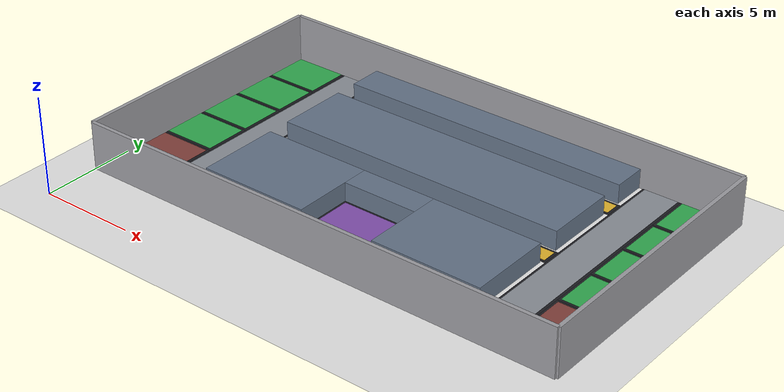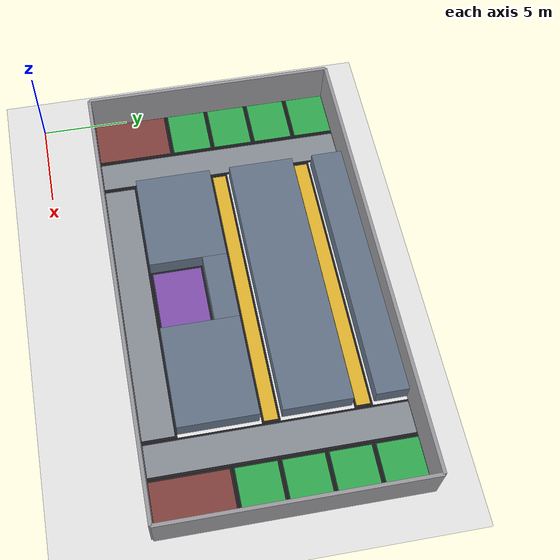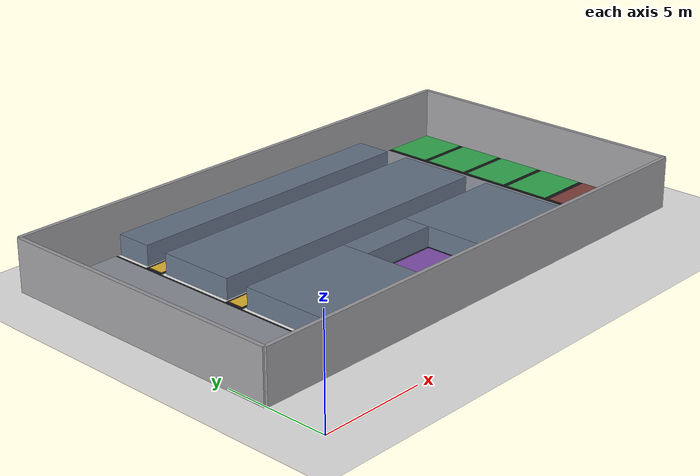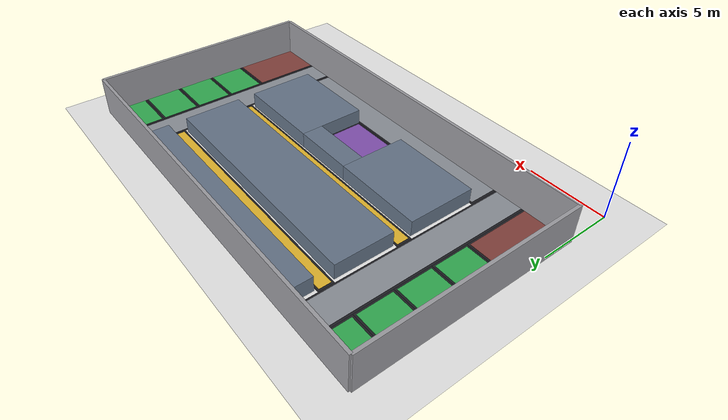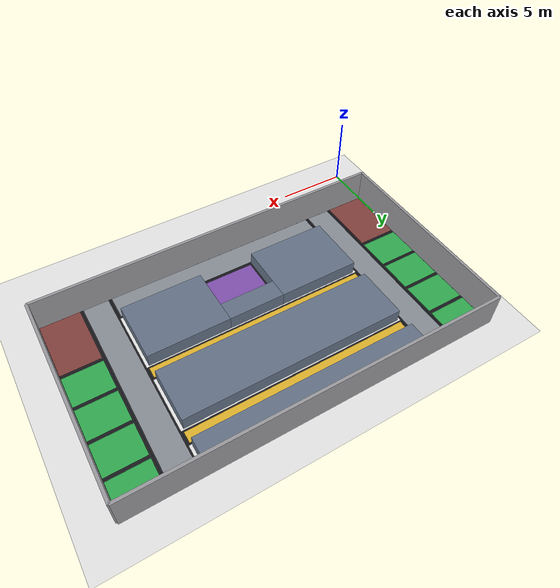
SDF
<sdf version='1.10'>
  <world name='p2'>
    <physics name='1ms' type='ignored'>
      <max_step_size>0.001</max_step_size><real_time_factor>1</real_time_factor>
    </physics>
    <plugin name='gz::sim::systems::Physics' filename='gz-sim-physics-system'/>
    <plugin name='gz::sim::systems::UserCommands' filename='gz-sim-user-commands-system'/>
    <plugin name='gz::sim::systems::SceneBroadcaster' filename='gz-sim-scene-broadcaster-system'/>
    <plugin name='gz::sim::systems::Contact' filename='gz-sim-contact-system'/>
    <!-- 서버 레벨 시스템(시뮬당 1개) — 멀티로봇에서 로봇마다 넣으면 씬 중복 crash → 월드에 둠 -->
    <plugin name='gz::sim::systems::Sensors' filename='gz-sim-sensors-system'><render_engine>ogre2</render_engine></plugin>
    <plugin name='gz::sim::systems::Imu' filename='gz-sim-imu-system'/>
    <scene><ambient>0.5 0.5 0.5 1</ambient><background>0.85 0.87 0.9 1</background><shadows>true</shadows></scene>
    <model name='ground_plane'><static>true</static><link name='link'>
      <collision name='c'><geometry><plane><normal>0 0 1</normal><size>100 100</size></plane></geometry></collision>
      <visual name='v'><geometry><plane><normal>0 0 1</normal><size>100 100</size></plane></geometry>
      <material><ambient>0.92 0.92 0.92 1</ambient><diffuse>0.92 0.92 0.92 1</diffuse></material></visual>
    </link></model>
    <!-- floor zone tiles: 다크 테두리 + 색 inset (place 경계 가시) -->
    <model name='border_aisle_short_1'>
      <static>true</static>
      <pose>13.0 15.0 0.01 0 0 0</pose>
      <link name='link'>
        <visual name='v'><geometry><box><size>16.0 1.0 0.02</size></box></geometry><material><ambient>0.12 0.12 0.14 1</ambient><diffuse>0.12 0.12 0.14 1</diffuse></material></visual>
      </link>
    </model>
    <model name='tile_aisle_short_1'>
      <static>true</static>
      <pose>13.0 15.0 0.031 0 0 0</pose>
      <link name='link'>
        <visual name='v'><geometry><box><size>15.76 0.76 0.02</size></box></geometry><material><ambient>0.9 0.72 0.18 1</ambient><diffuse>0.9 0.72 0.18 1</diffuse></material></visual>
      </link>
    </model>
    <model name='border_aisle_short_2'>
      <static>true</static>
      <pose>13.0 10.0 0.01 0 0 0</pose>
      <link name='link'>
        <visual name='v'><geometry><box><size>16.0 1.0 0.02</size></box></geometry><material><ambient>0.12 0.12 0.14 1</ambient><diffuse>0.12 0.12 0.14 1</diffuse></material></visual>
      </link>
    </model>
    <model name='tile_aisle_short_2'>
      <static>true</static>
      <pose>13.0 10.0 0.031 0 0 0</pose>
      <link name='link'>
        <visual name='v'><geometry><box><size>15.76 0.76 0.02</size></box></geometry><material><ambient>0.9 0.72 0.18 1</ambient><diffuse>0.9 0.72 0.18 1</diffuse></material></visual>
      </link>
    </model>
    <model name='border_corridor_load'>
      <static>true</static>
      <pose>4.0 10.25 0.01 0 0 0</pose>
      <link name='link'>
        <visual name='v'><geometry><box><size>2.0 14.5 0.02</size></box></geometry><material><ambient>0.12 0.12 0.14 1</ambient><diffuse>0.12 0.12 0.14 1</diffuse></material></visual>
      </link>
    </model>
    <model name='tile_corridor_load'>
      <static>true</static>
      <pose>4.0 10.25 0.031 0 0 0</pose>
      <link name='link'>
        <visual name='v'><geometry><box><size>1.76 14.26 0.02</size></box></geometry><material><ambient>0.55 0.57 0.6 1</ambient><diffuse>0.55 0.57 0.6 1</diffuse></material></visual>
      </link>
    </model>
    <model name='border_corridor_unload'>
      <static>true</static>
      <pose>22.0 10.25 0.01 0 0 0</pose>
      <link name='link'>
        <visual name='v'><geometry><box><size>2.0 14.5 0.02</size></box></geometry><material><ambient>0.12 0.12 0.14 1</ambient><diffuse>0.12 0.12 0.14 1</diffuse></material></visual>
      </link>
    </model>
    <model name='tile_corridor_unload'>
      <static>true</static>
      <pose>22.0 10.25 0.031 0 0 0</pose>
      <link name='link'>
        <visual name='v'><geometry><box><size>1.76 14.26 0.02</size></box></geometry><material><ambient>0.55 0.57 0.6 1</ambient><diffuse>0.55 0.57 0.6 1</diffuse></material></visual>
      </link>
    </model>
    <model name='border_corridor_main'>
      <static>true</static>
      <pose>13.0 4.0 0.01 0 0 0</pose>
      <link name='link'>
        <visual name='v'><geometry><box><size>16.0 2.0 0.02</size></box></geometry><material><ambient>0.12 0.12 0.14 1</ambient><diffuse>0.12 0.12 0.14 1</diffuse></material></visual>
      </link>
    </model>
    <model name='tile_corridor_main'>
      <static>true</static>
      <pose>13.0 4.0 0.031 0 0 0</pose>
      <link name='link'>
        <visual name='v'><geometry><box><size>15.76 1.76 0.02</size></box></geometry><material><ambient>0.55 0.57 0.6 1</ambient><diffuse>0.55 0.57 0.6 1</diffuse></material></visual>
      </link>
    </model>
    <model name='border_home'>
      <static>true</static>
      <pose>13.0 6.5 0.01 0 0 0</pose>
      <link name='link'>
        <visual name='v'><geometry><box><size>4.0 3.0 0.02</size></box></geometry><material><ambient>0.12 0.12 0.14 1</ambient><diffuse>0.12 0.12 0.14 1</diffuse></material></visual>
      </link>
    </model>
    <model name='tile_home'>
      <static>true</static>
      <pose>13.0 6.5 0.031 0 0 0</pose>
      <link name='link'>
        <visual name='v'><geometry><box><size>3.76 2.76 0.02</size></box></geometry><material><ambient>0.52 0.32 0.7 1</ambient><diffuse>0.52 0.32 0.7 1</diffuse></material></visual>
      </link>
    </model>
    <model name='border_loading_1'>
      <static>true</static>
      <pose>1.5 16.25 0.01 0 0 0</pose>
      <link name='link'>
        <visual name='v'><geometry><box><size>3.0 2.5 0.02</size></box></geometry><material><ambient>0.12 0.12 0.14 1</ambient><diffuse>0.12 0.12 0.14 1</diffuse></material></visual>
      </link>
    </model>
    <model name='tile_loading_1'>
      <static>true</static>
      <pose>1.5 16.25 0.031 0 0 0</pose>
      <link name='link'>
        <visual name='v'><geometry><box><size>2.76 2.26 0.02</size></box></geometry><material><ambient>0.2 0.68 0.32 1</ambient><diffuse>0.2 0.68 0.32 1</diffuse></material></visual>
      </link>
    </model>
    <model name='border_loading_2'>
      <static>true</static>
      <pose>1.5 13.75 0.01 0 0 0</pose>
      <link name='link'>
        <visual name='v'><geometry><box><size>3.0 2.5 0.02</size></box></geometry><material><ambient>0.12 0.12 0.14 1</ambient><diffuse>0.12 0.12 0.14 1</diffuse></material></visual>
      </link>
    </model>
    <model name='tile_loading_2'>
      <static>true</static>
      <pose>1.5 13.75 0.031 0 0 0</pose>
      <link name='link'>
        <visual name='v'><geometry><box><size>2.76 2.26 0.02</size></box></geometry><material><ambient>0.2 0.68 0.32 1</ambient><diffuse>0.2 0.68 0.32 1</diffuse></material></visual>
      </link>
    </model>
    <model name='border_loading_3'>
      <static>true</static>
      <pose>1.5 11.25 0.01 0 0 0</pose>
      <link name='link'>
        <visual name='v'><geometry><box><size>3.0 2.5 0.02</size></box></geometry><material><ambient>0.12 0.12 0.14 1</ambient><diffuse>0.12 0.12 0.14 1</diffuse></material></visual>
      </link>
    </model>
    <model name='tile_loading_3'>
      <static>true</static>
      <pose>1.5 11.25 0.031 0 0 0</pose>
      <link name='link'>
        <visual name='v'><geometry><box><size>2.76 2.26 0.02</size></box></geometry><material><ambient>0.2 0.68 0.32 1</ambient><diffuse>0.2 0.68 0.32 1</diffuse></material></visual>
      </link>
    </model>
    <model name='border_loading_4'>
      <static>true</static>
      <pose>1.5 8.75 0.01 0 0 0</pose>
      <link name='link'>
        <visual name='v'><geometry><box><size>3.0 2.5 0.02</size></box></geometry><material><ambient>0.12 0.12 0.14 1</ambient><diffuse>0.12 0.12 0.14 1</diffuse></material></visual>
      </link>
    </model>
    <model name='tile_loading_4'>
      <static>true</static>
      <pose>1.5 8.75 0.031 0 0 0</pose>
      <link name='link'>
        <visual name='v'><geometry><box><size>2.76 2.26 0.02</size></box></geometry><material><ambient>0.2 0.68 0.32 1</ambient><diffuse>0.2 0.68 0.32 1</diffuse></material></visual>
      </link>
    </model>
    <model name='border_unloading_1'>
      <static>true</static>
      <pose>24.5 16.25 0.01 0 0 0</pose>
      <link name='link'>
        <visual name='v'><geometry><box><size>3.0 2.5 0.02</size></box></geometry><material><ambient>0.12 0.12 0.14 1</ambient><diffuse>0.12 0.12 0.14 1</diffuse></material></visual>
      </link>
    </model>
    <model name='tile_unloading_1'>
      <static>true</static>
      <pose>24.5 16.25 0.031 0 0 0</pose>
      <link name='link'>
        <visual name='v'><geometry><box><size>2.76 2.26 0.02</size></box></geometry><material><ambient>0.2 0.68 0.32 1</ambient><diffuse>0.2 0.68 0.32 1</diffuse></material></visual>
      </link>
    </model>
    <model name='border_unloading_2'>
      <static>true</static>
      <pose>24.5 13.75 0.01 0 0 0</pose>
      <link name='link'>
        <visual name='v'><geometry><box><size>3.0 2.5 0.02</size></box></geometry><material><ambient>0.12 0.12 0.14 1</ambient><diffuse>0.12 0.12 0.14 1</diffuse></material></visual>
      </link>
    </model>
    <model name='tile_unloading_2'>
      <static>true</static>
      <pose>24.5 13.75 0.031 0 0 0</pose>
      <link name='link'>
        <visual name='v'><geometry><box><size>2.76 2.26 0.02</size></box></geometry><material><ambient>0.2 0.68 0.32 1</ambient><diffuse>0.2 0.68 0.32 1</diffuse></material></visual>
      </link>
    </model>
    <model name='border_unloading_3'>
      <static>true</static>
      <pose>24.5 11.25 0.01 0 0 0</pose>
      <link name='link'>
        <visual name='v'><geometry><box><size>3.0 2.5 0.02</size></box></geometry><material><ambient>0.12 0.12 0.14 1</ambient><diffuse>0.12 0.12 0.14 1</diffuse></material></visual>
      </link>
    </model>
    <model name='tile_unloading_3'>
      <static>true</static>
      <pose>24.5 11.25 0.031 0 0 0</pose>
      <link name='link'>
        <visual name='v'><geometry><box><size>2.76 2.26 0.02</size></box></geometry><material><ambient>0.2 0.68 0.32 1</ambient><diffuse>0.2 0.68 0.32 1</diffuse></material></visual>
      </link>
    </model>
    <model name='border_unloading_4'>
      <static>true</static>
      <pose>24.5 8.75 0.01 0 0 0</pose>
      <link name='link'>
        <visual name='v'><geometry><box><size>3.0 2.5 0.02</size></box></geometry><material><ambient>0.12 0.12 0.14 1</ambient><diffuse>0.12 0.12 0.14 1</diffuse></material></visual>
      </link>
    </model>
    <model name='tile_unloading_4'>
      <static>true</static>
      <pose>24.5 8.75 0.031 0 0 0</pose>
      <link name='link'>
        <visual name='v'><geometry><box><size>2.76 2.26 0.02</size></box></geometry><material><ambient>0.2 0.68 0.32 1</ambient><diffuse>0.2 0.68 0.32 1</diffuse></material></visual>
      </link>
    </model>
    <model name='border_dead_0'>
      <static>true</static>
      <pose>1.5 5.25 0.01 0 0 0</pose>
      <link name='link'>
        <visual name='v'><geometry><box><size>3.0 4.5 0.02</size></box></geometry><material><ambient>0.12 0.12 0.14 1</ambient><diffuse>0.12 0.12 0.14 1</diffuse></material></visual>
      </link>
    </model>
    <model name='tile_dead_0'>
      <static>true</static>
      <pose>1.5 5.25 0.031 0 0 0</pose>
      <link name='link'>
        <visual name='v'><geometry><box><size>2.76 4.26 0.02</size></box></geometry><material><ambient>0.52 0.26 0.24 1</ambient><diffuse>0.52 0.26 0.24 1</diffuse></material></visual>
      </link>
    </model>
    <model name='border_dead_1'>
      <static>true</static>
      <pose>24.5 5.25 0.01 0 0 0</pose>
      <link name='link'>
        <visual name='v'><geometry><box><size>3.0 4.5 0.02</size></box></geometry><material><ambient>0.12 0.12 0.14 1</ambient><diffuse>0.12 0.12 0.14 1</diffuse></material></visual>
      </link>
    </model>
    <model name='tile_dead_1'>
      <static>true</static>
      <pose>24.5 5.25 0.031 0 0 0</pose>
      <link name='link'>
        <visual name='v'><geometry><box><size>2.76 4.26 0.02</size></box></geometry><material><ambient>0.52 0.26 0.24 1</ambient><diffuse>0.52 0.26 0.24 1</diffuse></material></visual>
      </link>
    </model>
    <!-- physical walls (실주행 구조) — 내부 블록은 창고톤 색 -->
    <model name='wall_0'>
      <static>true</static>
      <pose>13.0 16.55 0.5 0 0 0</pose>
      <link name='link'>
        <collision name='c'><geometry><box><size>15.600000000000001 1.9000000000000004 1.0</size></box></geometry></collision>
        <visual name='v'><geometry><box><size>15.600000000000001 1.9000000000000004 1.0</size></box></geometry><material><ambient>0.4 0.46 0.54 1</ambient><diffuse>0.4 0.46 0.54 1</diffuse></material></visual>
      </link>
    </model>
    <model name='wall_1'>
      <static>true</static>
      <pose>13.0 12.5 0.5 0 0 0</pose>
      <link name='link'>
        <collision name='c'><geometry><box><size>15.600000000000001 3.8000000000000007 1.0</size></box></geometry></collision>
        <visual name='v'><geometry><box><size>15.600000000000001 3.8000000000000007 1.0</size></box></geometry><material><ambient>0.4 0.46 0.54 1</ambient><diffuse>0.4 0.46 0.54 1</diffuse></material></visual>
      </link>
    </model>
    <model name='wall_2'>
      <static>true</static>
      <pose>8.1 7.2 0.5 0 0 0</pose>
      <link name='link'>
        <collision name='c'><geometry><box><size>5.8 4.4 1.0</size></box></geometry></collision>
        <visual name='v'><geometry><box><size>5.8 4.4 1.0</size></box></geometry><material><ambient>0.4 0.46 0.54 1</ambient><diffuse>0.4 0.46 0.54 1</diffuse></material></visual>
      </link>
    </model>
    <model name='wall_3'>
      <static>true</static>
      <pose>17.9 7.2 0.5 0 0 0</pose>
      <link name='link'>
        <collision name='c'><geometry><box><size>5.800000000000001 4.4 1.0</size></box></geometry></collision>
        <visual name='v'><geometry><box><size>5.800000000000001 4.4 1.0</size></box></geometry><material><ambient>0.4 0.46 0.54 1</ambient><diffuse>0.4 0.46 0.54 1</diffuse></material></visual>
      </link>
    </model>
    <model name='wall_4'>
      <static>true</static>
      <pose>13.0 8.7 0.5 0 0 0</pose>
      <link name='link'>
        <collision name='c'><geometry><box><size>4 1.4000000000000004 1.0</size></box></geometry></collision>
        <visual name='v'><geometry><box><size>4 1.4000000000000004 1.0</size></box></geometry><material><ambient>0.4 0.46 0.54 1</ambient><diffuse>0.4 0.46 0.54 1</diffuse></material></visual>
      </link>
    </model>
    <model name='wall_5'>
      <static>true</static>
      <pose>0.0 10.25 1.25 0 0 0</pose>
      <link name='link'>
        <collision name='c'><geometry><box><size>0.2 14.5 2.5</size></box></geometry></collision>
        <visual name='v'><geometry><box><size>0.2 14.5 2.5</size></box></geometry><material><ambient>0.62 0.62 0.64 1</ambient><diffuse>0.62 0.62 0.64 1</diffuse></material></visual>
      </link>
    </model>
    <model name='wall_6'>
      <static>true</static>
      <pose>26.0 10.25 1.25 0 0 0</pose>
      <link name='link'>
        <collision name='c'><geometry><box><size>0.20000000000000284 14.5 2.5</size></box></geometry></collision>
        <visual name='v'><geometry><box><size>0.20000000000000284 14.5 2.5</size></box></geometry><material><ambient>0.62 0.62 0.64 1</ambient><diffuse>0.62 0.62 0.64 1</diffuse></material></visual>
      </link>
    </model>
    <model name='wall_7'>
      <static>true</static>
      <pose>13.0 17.5 1.25 0 0 0</pose>
      <link name='link'>
        <collision name='c'><geometry><box><size>26.0 0.20000000000000284 2.5</size></box></geometry></collision>
        <visual name='v'><geometry><box><size>26.0 0.20000000000000284 2.5</size></box></geometry><material><ambient>0.62 0.62 0.64 1</ambient><diffuse>0.62 0.62 0.64 1</diffuse></material></visual>
      </link>
    </model>
    <model name='wall_8'>
      <static>true</static>
      <pose>13.0 3.0 1.25 0 0 0</pose>
      <link name='link'>
        <collision name='c'><geometry><box><size>26.0 0.20000000000000018 2.5</size></box></geometry></collision>
        <visual name='v'><geometry><box><size>26.0 0.20000000000000018 2.5</size></box></geometry><material><ambient>0.62 0.62 0.64 1</ambient><diffuse>0.62 0.62 0.64 1</diffuse></material></visual>
      </link>
    </model>
    <light name='sun' type='directional'>
      <pose>0 0 12 0 0 0</pose><cast_shadows>true</cast_shadows><intensity>1</intensity>
      <direction>-0.4 0.2 -0.9</direction>
      <diffuse>0.85 0.85 0.85 1</diffuse><specular>0.2 0.2 0.2 1</specular>
      <attenuation><range>1000</range><linear>0.01</linear><constant>0.9</constant><quadratic>0.001</quadratic></attenuation>
    </light>
  </world>
</sdf>
